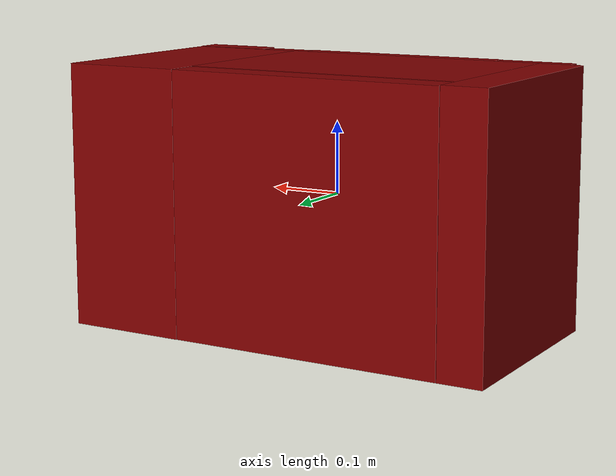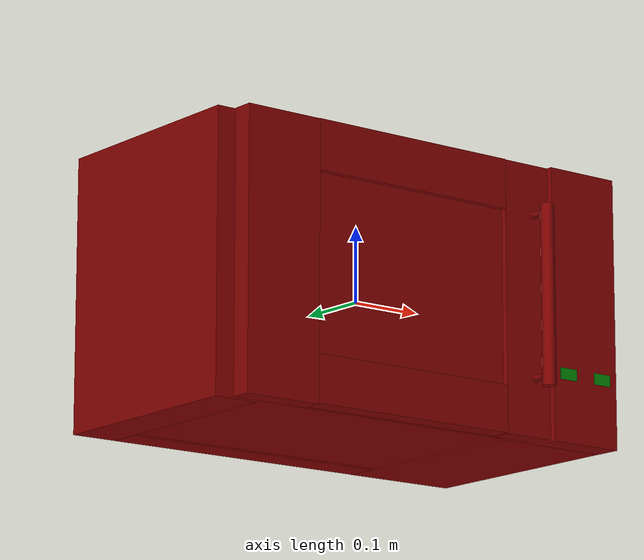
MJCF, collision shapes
<mujoco model="model">
  <compiler angle="radian"/>
  <asset>
    <mesh file="visuals/door.obj" name="door_vis"/>
    <mesh file="visuals/door_Clear.obj" name="door_Clear_vis"/>
    <mesh file="visuals/Body001.obj" name="Body001_vis"/>
    <mesh file="visuals/Disc001.obj" name="Disc001_vis"/>
    <texture file="visuals/T_BC001.png" name="Body001_material" type="2d"/>
    <material name="Body001_material" rgba="1 1 1 1.0" texture="Body001_material" shininess="0.5" specular="0.3103448502657381"/>
    <texture file="visuals/T_BC001.png" name="door_material" type="2d"/>
    <material name="door_material" rgba="1 1 1 1.0" texture="door_material" shininess="0.5" specular="0.3103448502657381"/>
    <material name="door_Clear_material" rgba="0.011301128193736076 0.011301128193736076 0.011301128193736076 0.800000011920929" shininess="0.4472135901451111" specular="0.3103448502657381"/>
    <texture file="visuals/T_BC001.png" name="Disc001_material" type="2d"/>
    <material name="Disc001_material" rgba="1 1 1 1.0" texture="Disc001_material" shininess="0.5" specular="0.3103448502657381"/>
  </asset>
  <default>
    <default class="visual">
      <geom conaffinity="0" contype="0" group="1" type="mesh"/>
    </default>
    <default class="collision">
      <geom group="0" rgba="0.5 0 0 0.5"/>
    </default>
    <default class="spawn">
      <geom group="0" rgba="1 1 1 0.5" contype="0" conaffinity="0"/>
      <site group="0" rgba="1 1 1 0.5"/>
    </default>
    <default class="region">
      <geom group="1" conaffinity="0" contype="0" rgba="0 1 0 0"/>
    </default>
  </default>
  <worldbody>
    <body>
      <body name="object">
        <geom class="collision" type="box" pos="-0.047172 0.016127 -0.116030" size="0.11988721787929535 0.11988721787929535 0.0012215999886393547" quat="1.0 0.0 0.0 0.0" name="tray" rgba="0 1 0 0.5"/>
        <geom class="collision" type="box" pos="0.221815 -0.159488 -0.091739" size="0.013739243149757385 0.0004428497632034123 0.007522364147007465" quat="1.0 0.0 0.0 0.0" name="start_button" rgba="0.0 0.5 0 0.5"/>
        <geom class="collision" type="box" pos="0.279408 -0.159488 -0.091739" size="0.013739248737692833 0.00044284993782639503 0.007522366940975189" quat="1.0 0.0 0.0 0.0" name="stop_button" rgba="0.0 0.5 0 0.5"/>
        <geom mesh="Body001_vis" type="mesh" solimp="0.998 0.998 0.001" solref="0.001 1" density="100" friction="0.95 0.3 0.1" class="visual" material="Body001_material"/>
        <geom class="collision" type="box" pos="0.222142 0.033385 -0.000403" size="0.08281693607568741 0.1551341712474823 0.18064968287944794" quat="1.0 0.0 0.0 0.0"/>
        <geom class="collision" type="box" pos="-0.274984 0.034465 -0.000104" size="0.030846407637000084 0.15312334895133972 0.1809488832950592" quat="1.0 0.0 0.0 0.0"/>
        <geom class="collision" type="box" pos="-0.051482 0.164722 -0.000597" size="0.19173388183116913 0.023067349568009377 0.18045580387115479" quat="1.0 0.0 0.0 0.0"/>
        <geom class="collision" type="box" pos="-0.051482 0.010247 0.152048" size="0.19173388183116913 0.1316639631986618 0.02857215702533722" quat="1.0 0.0 0.0 0.0"/>
        <geom class="collision" type="box" pos="-0.051482 0.010247 -0.156082" size="0.19173388183116913 0.1316639631986618 0.023366037756204605" quat="1.0 0.0 0.0 0.0"/>
        <geom class="collision" type="box" pos="0.252130 -0.139694 -0.000230" size="0.05358409509062767 0.01777021400630474 0.1808224618434906" quat="1.0 0.0 0.0 0.0"/>
        <body name="door">
          <joint axis="0.0 0.0 1.0" pos="-0.282481 -0.138397 -0.000000" limited="true" name="microjoint" range="-1.5707963267948966 0.0" type="hinge" damping="1" frictionloss="1" armature=".01" stiffness="0.05"/>
          <geom mesh="door_vis" type="mesh" solimp="0.998 0.998 0.001" solref="0.001 1" density="100" friction="0.95 0.3 0.1" class="visual" material="door_material"/>
          <geom class="collision" type="box" pos="-0.229434 -0.138300 -0.000394" size="0.05410221219062805 0.013928515836596489 0.1799190789461136" quat="1.0 0.0 0.0 0.0"/>
          <geom class="collision" type="box" pos="0.160382 -0.138300 -0.000048" size="0.0359717532992363 0.013928515836596489 0.17946521937847137" quat="1.0 0.0 0.0 0.0"/>
          <geom class="collision" type="box" pos="-0.025130 -0.138300 0.146981" size="0.1499595195055008 0.013928515836596489 0.032924581319093704" quat="1.0 0.0 0.0 0.0"/>
          <geom class="collision" type="box" pos="-0.025130 -0.138300 -0.147839" size="0.1499595195055008 0.013928515836596489 0.031046153977513313" quat="1.0 0.0 0.0 0.0"/>
          <geom class="collision" type="cylinder" pos="0.170728 -0.180018 0.002568" size="0.008977634832262993 0.11893969029188156" quat="1.0 0.0 0.0 0.0" name="door_handle"/>
          <geom class="collision" type="cylinder" pos="0.170691 -0.160370 0.111453" size="0.004518518690019846 0.008720509707927704" quat="0.7071068286895752 0.7071067690849304 0.0 0.0"/>
          <geom class="collision" type="cylinder" pos="0.170691 -0.160370 -0.103230" size="0.004518518690019846 0.008720509707927704" quat="0.7071068286895752 0.7071067690849304 0.0 0.0"/>
          <body name="door_Clear">
            <geom mesh="door_Clear_vis" type="mesh" solimp="0.998 0.998 0.001" solref="0.001 1" density="100" friction="0.95 0.3 0.1" class="visual" material="door_Clear_material"/>
            <geom class="collision" type="box" pos="-0.052543 -0.143427 -0.000169" size="0.18359345197677612 0.0010205433936789632 0.12004256993532181" quat="1.0 0.0 0.0 0.0"/>
          </body>
        </body>
        <body name="Disc001">
          <joint axis="0.0 0.0 1.0" pos="-0.047653 0.016661 -0.119503" limited="false" name="Disc001_joint" range="0 360" type="hinge" damping="1" frictionloss="1" armature=".01" stiffness="0.05"/>
          <geom mesh="Disc001_vis" type="mesh" solimp="0.998 0.998 0.001" solref="0.001 1" density="100" friction="0.95 0.3 0.1" class="visual" material="Disc001_material"/>
          <geom class="collision" type="cylinder" pos="-0.047172 0.016127 -0.121742" size="0.11988721787929535 0.002575480379164219" quat="1.0 0.0 0.0 0.0"/>
        </body>
        <geom class="region" name="reg_main" type="box" pos="0.0 0.015049999999999994 0.0" size="0.3059 0.17354999999999998 0.181147"/>
        <geom class="region" name="reg_int" type="box" pos="-0.053932999999999995 0.012451499999999997 -0.0044289999999999954" size="0.19010300000000002 0.12478249999999999 0.12423000000000001"/>
      </body>
    </body>
  </worldbody>
  <actuator>
    <motor name="microjoint_actuator" joint="microjoint" gear="10"/>
    <motor name="Disc001_joint_actuator" joint="Disc001_joint" gear="10"/>
  </actuator>
</mujoco>
